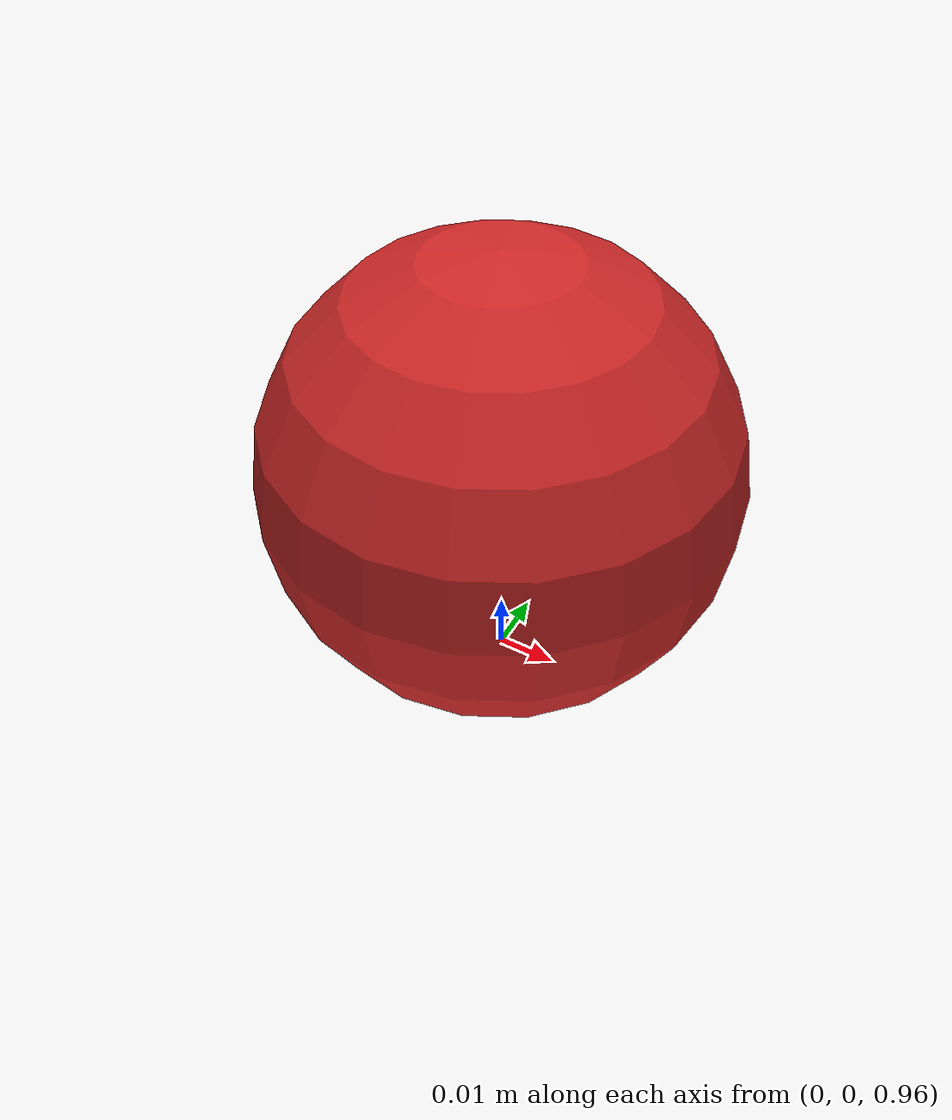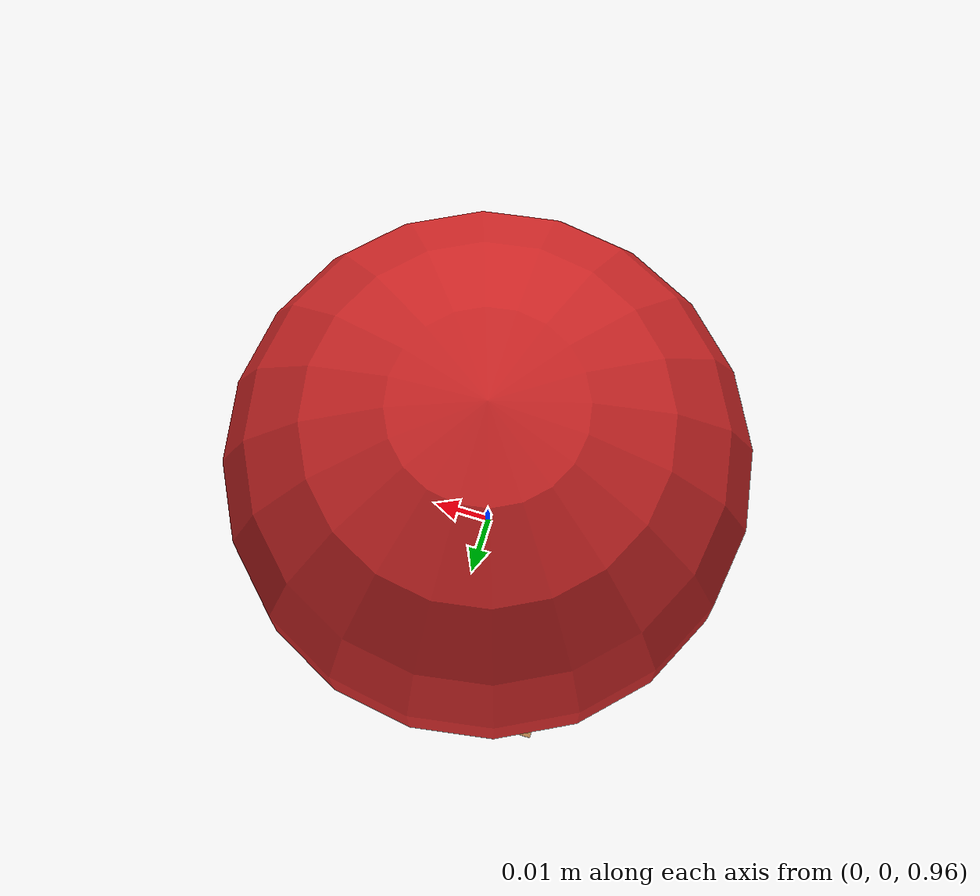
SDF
<?xml version="1.0"?>

<sdf version='1.6'>
  <world name='default'>
    <gravity>0 0 -9.8</gravity>
    <magnetic_field>6e-06 2.3e-05 -4.2e-05</magnetic_field>
    <atmosphere type='adiabatic'/>

    <physics name='default_physics' default='0' type='ode'>
      <ode>
        <solver>
          <type>quick</type>
          <iters>100</iters>
          <precon_iters>0</precon_iters>
          <sor>1</sor>
          <use_dynamic_moi_rescaling>0</use_dynamic_moi_rescaling>
        </solver>
        <constraints>
          <cfm>0</cfm>
          <erp>0.5</erp>
          <contact_max_correcting_vel>1000</contact_max_correcting_vel>
          <contact_surface_layer>0</contact_surface_layer>
        </constraints>
      </ode>
      <max_step_size>0.001</max_step_size>
      <real_time_factor>1</real_time_factor>
      <real_time_update_rate>1000</real_time_update_rate>
    </physics>

    <scene>
      <ambient>0.4 0.4 0.4 1</ambient>
      <background>0.7 0.7 1 1</background>
      <shadows>1</shadows>
    </scene>

    <spherical_coordinates>
      <surface_model>EARTH_WGS84</surface_model>
      <latitude_deg>0</latitude_deg>
      <longitude_deg>0</longitude_deg>
      <elevation>0</elevation>
      <heading_deg>0</heading_deg>
    </spherical_coordinates>

    <model name='cricket_ball'>
      <link name='link'>
        <pose frame=''>0 0 0 0 0 0</pose>
        <inertial>
          <mass>0.1467</mass>
          <inertia>
            <ixx>8.25187e-05</ixx>
            <ixy>0</ixy>
            <ixz>0</ixz>
            <iyy>8.25187e-05</iyy>
            <iyz>0</iyz>
            <izz>8.25187e-05</izz>
          </inertia>
        </inertial>
        <collision name='collision'>
          <geometry>
            <sphere>
              <radius>0.0375</radius>
            </sphere>
          </geometry>
          <surface>
            <contact>
              <poissons_ratio>0.347</poissons_ratio>
              <elastic_modulus>8.8e+09</elastic_modulus>
              <ode>
                <kp>100000</kp>
                <kd>100</kd>
                <max_vel>100</max_vel>
                <min_depth>0.001</min_depth>
              </ode>
            </contact>
            <friction>
              <torsional>
                <coefficient>1</coefficient>
                <use_patch_radius>0</use_patch_radius>
                <surface_radius>0.01</surface_radius>
                <ode/>
              </torsional>
              <ode/>
            </friction>
            <bounce/>
          </surface>
          <max_contacts>10</max_contacts>
        </collision>
        <visual name='visual'>
          <geometry>
            <sphere>
              <radius>0.0375</radius>
            </sphere>
          </geometry>
          <material>
            <script>
              <uri>file://media/materials/scripts/gazebo.material</uri>
              <name>Gazebo/Red</name>
            </script>
          </material>
        </visual>
        <velocity_decay>
          <linear>0</linear>
          <angular>0.005</angular>
        </velocity_decay>
        <self_collide>0</self_collide>
        <kinematic>0</kinematic>
      </link>
      <pose frame=''>0 0 1 0 0 0</pose>
    </model>

    <gui fullscreen='0'>
      <camera name='user_camera'>
        <pose frame=''>5 -5 2 0 0.275643 2.35619</pose>
        <view_controller>orbit</view_controller>
        <projection_type>perspective</projection_type>
      </camera>
    </gui>

    <light name='user_directional_light_0' type='directional'>
      <pose frame=''>0 3 3 0 0 0</pose>
      <diffuse>0.9 0.85 0.8 1</diffuse>
      <specular>0.1 0.1 0.1 1</specular>
      <direction>0.1 0.1 -0.9</direction>
      <attenuation>
        <range>20</range>
        <constant>0.5</constant>
        <linear>0.01</linear>
        <quadratic>0.001</quadratic>
      </attenuation>
      <cast_shadows>1</cast_shadows>
    </light>

    <model name='floor'>
      <static>1</static>
      <pose frame=''>0 0 -0.025 0 -0 0</pose>
      <link name='link'>
        <inertial>
          <mass>1</mass>
          <inertia>
            <ixx>0.166667</ixx>
            <ixy>0</ixy>
            <ixz>0</ixz>
            <iyy>0.166667</iyy>
            <iyz>0</iyz>
            <izz>0.166667</izz>
          </inertia>
        </inertial>
        <collision name='collision'>
          <geometry>
            <box>
              <size>8 8 0.05</size>
            </box>
          </geometry>
          <max_contacts>10</max_contacts>
          <surface>
            <contact>
              <ode/>
            </contact>
            <bounce/>
            <friction>
              <torsional>
                <ode/>
              </torsional>
              <ode/>
            </friction>
          </surface>
        </collision>
        <visual name='visual'>
          <geometry>
            <box>
              <size>8 8 0.05</size>
            </box>
          </geometry>
          <material>
            <script>
              <uri>file://media/materials/scripts/gazebo.material</uri>
              <name>Gazebo/Wood</name>
            </script>
            <ambient>1 1 1 1</ambient>
          </material>
        </visual>
        <self_collide>0</self_collide>
        <kinematic>0</kinematic>
      </link>
    </model>

  </world>
</sdf>
